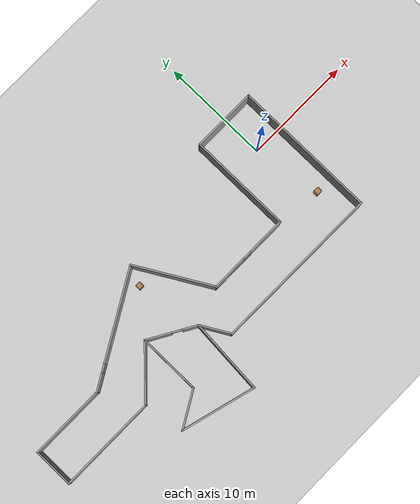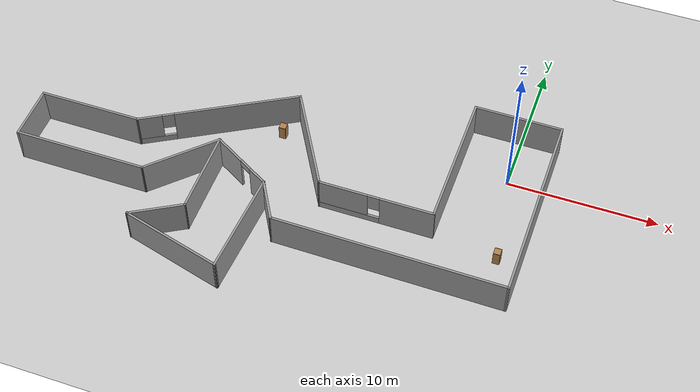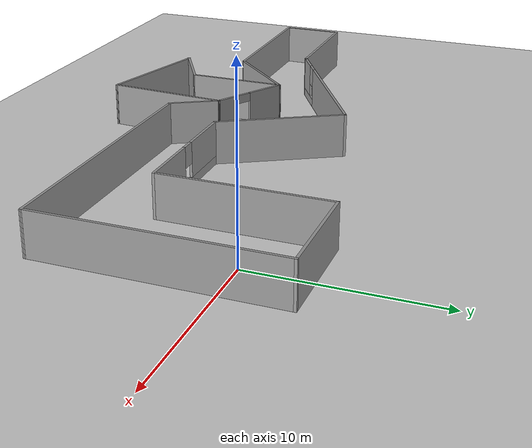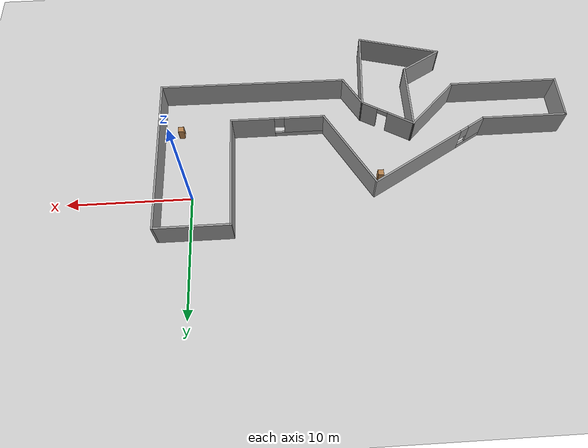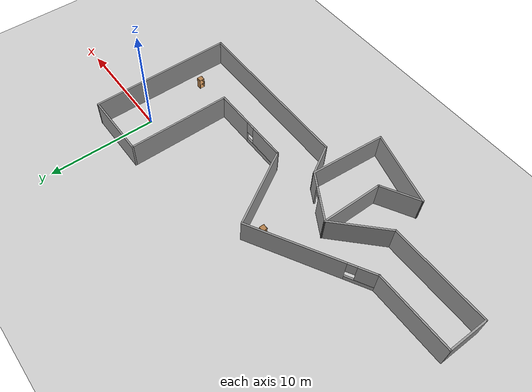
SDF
<sdf version="1.6">
 <world name="default">
  <light name="sun" type="directional">
   <pose>0 0 10 0 -0 0</pose>
   <diffuse>0.8 0.8 0.8 1</diffuse>
   <specular>0.2 0.2 0.2 1</specular>
   <attenuation>
    <range>1000</range>
    <constant>0.9</constant>
    <linear>0.01</linear>
    <quadratic>0.001</quadratic>
   </attenuation>
   <direction>-0.5 0.1 -0.9</direction>
  </light>
  <model name="ground_plane">
   <static>1</static>
   <link name="link">
    <collision name="collision">
     <geometry><plane><normal>0 0 1</normal><size>100 100</size></plane></geometry>
     <surface><friction><ode><mu>100</mu><mu2>50</mu2></ode></friction></surface>
    </collision>
    <visual name="visual">
     <cast_shadows>0</cast_shadows>
     <geometry><plane><normal>0 0 1</normal><size>100 100</size></plane></geometry>
     <material>
      <script><uri>file://media/materials/scripts/gazebo.material</uri><name>Gazebo/Grey</name></script>
     </material>
    </visual>
   </link>
  </model>
  <gravity>0 0 -9.8</gravity>
  <magnetic_field>6e-06 2.3e-05 -4.2e-05</magnetic_field>
  <atmosphere type="adiabatic"/>
  <physics name="default_physics" default="0" type="ode">
   <max_step_size>0.001</max_step_size>
   <real_time_factor>1</real_time_factor>
   <real_time_update_rate>1000</real_time_update_rate>
  </physics>
  <scene><ambient>0.4 0.4 0.4 1</ambient><background>0.7 0.7 0.7 1</background><shadows>1</shadows></scene>
  <spherical_coordinates>
   <surface_model>EARTH_WGS84</surface_model>
   <latitude_deg>0</latitude_deg>
   <longitude_deg>0</longitude_deg>
   <elevation>0</elevation>
   <heading_deg>0</heading_deg>
  </spherical_coordinates>
  <model name="cabinet_clone_1">
   <static>1</static>
   <link name="cabinet_bottom_plate">
    <inertial>
     <pose>0 0 -1 0 -0 0</pose>
     <inertia><ixx>2.05</ixx><ixy>0</ixy><ixz>0</ixz><iyy>2.05</iyy><iyz>0</iyz><izz>2.05</izz></inertia>
     <mass>25</mass>
    </inertial>
    <collision name="cabinet_bottom_plate_geom">
     <pose>0 0 0.01 0 -0 0</pose>
     <geometry><box><size>0.45 0.45 0.02</size></box></geometry>
    </collision>
    <visual name="cabinet_bottom_plate_geom_visual">
     <pose>0 0 0.01 0 -0 0</pose>
     <geometry><box><size>0.45 0.45 0.02</size></box></geometry>
     <material>
      <script><uri>file://media/materials/scripts/gazebo.material</uri><name>Gazebo/Wood</name></script>
     </material>
    </visual>
    <collision name="cabinet_bottom_plate_geom_cabinet_back_plate">
     <pose>0.235 0 0.51 0 -0 0</pose>
     <geometry><box><size>0.02 0.45 1.02</size></box></geometry>
    </collision>
    <visual name="cabinet_bottom_plate_geom_cabinet_back_plate_visual">
     <pose>0.235 0 0.51 0 -0 0</pose>
     <geometry><box><size>0.02 0.45 1.02</size></box></geometry>
     <material>
      <script><uri>file://media/materials/scripts/gazebo.material</uri><name>Gazebo/Wood</name></script>
     </material>
    </visual>
    <collision name="cabinet_bottom_plate_geom_cabinet_left_plate">
     <pose>0 0.235 0.51 0 -0 0</pose>
     <geometry><box><size>0.45 0.02 1.02</size></box></geometry>
    </collision>
    <visual name="cabinet_bottom_plate_geom_cabinet_left_plate_visual">
     <pose>0 0.235 0.51 0 -0 0</pose>
     <geometry><box><size>0.45 0.02 1.02</size></box></geometry>
     <material>
      <script><uri>file://media/materials/scripts/gazebo.material</uri><name>Gazebo/Wood</name></script>
     </material>
    </visual>
    <collision name="cabinet_bottom_plate_geom_cabinet_middle_plate">
     <pose>0 0 0.51 0 -0 0</pose>
     <geometry><box><size>0.45 0.45 0.02</size></box></geometry>
    </collision>
    <visual name="cabinet_bottom_plate_geom_cabinet_middle_plate_visual">
     <pose>0 0 0.51 0 -0 0</pose>
     <geometry><box><size>0.45 0.45 0.02</size></box></geometry>
     <material>
      <script><uri>file://media/materials/scripts/gazebo.material</uri><name>Gazebo/Wood</name></script>
     </material>
    </visual>
    <collision name="cabinet_bottom_plate_geom_cabinet_right_plate">
     <pose>0 -0.235 0.51 0 -0 0</pose>
     <geometry><box><size>0.45 0.02 1.02</size></box></geometry>
    </collision>
    <visual name="cabinet_bottom_plate_geom_cabinet_right_plate_visual">
     <pose>0 -0.235 0.51 0 -0 0</pose>
     <geometry><box><size>0.45 0.02 1.02</size></box></geometry>
     <material>
      <script><uri>file://media/materials/scripts/gazebo.material</uri><name>Gazebo/Wood</name></script>
     </material>
    </visual>
    <collision name="cabinet_bottom_plate_geom_cabinet_top_plate">
     <pose>0 0 1.01 0 -0 0</pose>
     <geometry><box><size>0.45 0.45 0.02</size></box></geometry>
    </collision>
    <visual name="cabinet_bottom_plate_geom_cabinet_top_plate_visual">
     <pose>0 0 1.01 0 -0 0</pose>
     <geometry><box><size>0.45 0.45 0.02</size></box></geometry>
     <material>
      <script><uri>file://media/materials/scripts/gazebo.material</uri><name>Gazebo/Wood</name></script>
     </material>
    </visual>
   </link>
   <pose>-15.2919 -1.01995 0 0 -0 0</pose>
  </model>
  <model name="cabinet_clone_2">
   <static>1</static>
   <link name="cabinet_bottom_plate">
    <inertial>
     <pose>0 0 -1 0 -0 0</pose>
     <inertia><ixx>2.05</ixx><ixy>0</ixy><ixz>0</ixz><iyy>2.05</iyy><iyz>0</iyz><izz>2.05</izz></inertia>
     <mass>25</mass>
    </inertial>
    <collision name="cabinet_bottom_plate_geom">
     <pose>0 0 0.01 0 -0 0</pose>
     <geometry><box><size>0.45 0.45 0.02</size></box></geometry>
    </collision>
    <visual name="cabinet_bottom_plate_geom_visual">
     <pose>0 0 0.01 0 -0 0</pose>
     <geometry><box><size>0.45 0.45 0.02</size></box></geometry>
     <material>
      <script><uri>file://media/materials/scripts/gazebo.material</uri><name>Gazebo/Wood</name></script>
     </material>
    </visual>
    <collision name="cabinet_bottom_plate_geom_cabinet_back_plate">
     <pose>0.235 0 0.51 0 -0 0</pose>
     <geometry><box><size>0.02 0.45 1.02</size></box></geometry>
    </collision>
    <visual name="cabinet_bottom_plate_geom_cabinet_back_plate_visual">
     <pose>0.235 0 0.51 0 -0 0</pose>
     <geometry><box><size>0.02 0.45 1.02</size></box></geometry>
     <material>
      <script><uri>file://media/materials/scripts/gazebo.material</uri><name>Gazebo/Wood</name></script>
     </material>
    </visual>
    <collision name="cabinet_bottom_plate_geom_cabinet_left_plate">
     <pose>0 0.235 0.51 0 -0 0</pose>
     <geometry><box><size>0.45 0.02 1.02</size></box></geometry>
    </collision>
    <visual name="cabinet_bottom_plate_geom_cabinet_left_plate_visual">
     <pose>0 0.235 0.51 0 -0 0</pose>
     <geometry><box><size>0.45 0.02 1.02</size></box></geometry>
     <material>
      <script><uri>file://media/materials/scripts/gazebo.material</uri><name>Gazebo/Wood</name></script>
     </material>
    </visual>
    <collision name="cabinet_bottom_plate_geom_cabinet_middle_plate">
     <pose>0 0 0.51 0 -0 0</pose>
     <geometry><box><size>0.45 0.45 0.02</size></box></geometry>
    </collision>
    <visual name="cabinet_bottom_plate_geom_cabinet_middle_plate_visual">
     <pose>0 0 0.51 0 -0 0</pose>
     <geometry><box><size>0.45 0.45 0.02</size></box></geometry>
     <material>
      <script><uri>file://media/materials/scripts/gazebo.material</uri><name>Gazebo/Wood</name></script>
     </material>
    </visual>
    <collision name="cabinet_bottom_plate_geom_cabinet_right_plate">
     <pose>0 -0.235 0.51 0 -0 0</pose>
     <geometry><box><size>0.45 0.02 1.02</size></box></geometry>
    </collision>
    <visual name="cabinet_bottom_plate_geom_cabinet_right_plate_visual">
     <pose>0 -0.235 0.51 0 -0 0</pose>
     <geometry><box><size>0.45 0.02 1.02</size></box></geometry>
     <material>
      <script><uri>file://media/materials/scripts/gazebo.material</uri><name>Gazebo/Wood</name></script>
     </material>
    </visual>
    <collision name="cabinet_bottom_plate_geom_cabinet_top_plate">
     <pose>0 0 1.01 0 -0 0</pose>
     <geometry><box><size>0.45 0.45 0.02</size></box></geometry>
    </collision>
    <visual name="cabinet_bottom_plate_geom_cabinet_top_plate_visual">
     <pose>0 0 1.01 0 -0 0</pose>
     <geometry><box><size>0.45 0.45 0.02</size></box></geometry>
     <material>
      <script><uri>file://media/materials/scripts/gazebo.material</uri><name>Gazebo/Wood</name></script>
     </material>
    </visual>
   </link>
   <pose>0.9834 -6.14509 0 0 -0 0</pose>
  </model>
  <model name="My_building">
   <pose>-14.197 -5.11874 0 0 -0 0</pose>
   <link name="Wall_11">
    <collision name="Wall_11_Collision">
     <geometry><box><size>13.25 0.15 2.5</size></box></geometry>
     <pose>0 0 1.25 0 -0 0</pose>
    </collision>
    <visual name="Wall_11_Visual">
     <pose>0 0 1.25 0 -0 0</pose>
     <geometry><box><size>13.25 0.15 2.5</size></box></geometry>
     <material>
      <script><uri>file://media/materials/scripts/gazebo.material</uri><name>Gazebo/Grey</name></script>
      <ambient>1 1 1 1</ambient>
     </material>
     <meta><layer>0</layer></meta>
    </visual>
    <pose>16.6854 2.15823 0 0 -0 1.5708</pose>
   </link>
   <link name="Wall_12">
    <collision name="Wall_12_Collision">
     <geometry><box><size>6 0.15 2.5</size></box></geometry>
     <pose>0 0 1.25 0 -0 0</pose>
    </collision>
    <visual name="Wall_12_Visual">
     <pose>0 0 1.25 0 -0 0</pose>
     <geometry><box><size>6 0.15 2.5</size></box></geometry>
     <material>
      <script><uri>file://media/materials/scripts/gazebo.material</uri><name>Gazebo/Grey</name></script>
      <ambient>1 1 1 1</ambient>
     </material>
     <meta><layer>0</layer></meta>
    </visual>
    <pose>13.7604 8.70823 0 0 -0 3.14159</pose>
   </link>
   <link name="Wall_13">
    <collision name="Wall_13_Collision">
     <geometry><box><size>9.5 0.15 2.5</size></box></geometry>
     <pose>0 0 1.25 0 -0 0</pose>
    </collision>
    <visual name="Wall_13_Visual">
     <pose>0 0 1.25 0 -0 0</pose>
     <geometry><box><size>9.5 0.15 2.5</size></box></geometry>
     <material>
      <script><uri>file://media/materials/scripts/gazebo.material</uri><name>Gazebo/Grey</name></script>
      <ambient>1 1 1 1</ambient>
     </material>
     <meta><layer>0</layer></meta>
    </visual>
    <pose>10.8354 4.03323 0 0 0 -1.5708</pose>
   </link>
   <link name="Wall_14">
    <pose>7.03543 -0.641771 0 0 -0 3.14159</pose>
    <visual name="Wall_14_Visual_0">
     <pose>-2.06762 0 1.25 0 -0 0</pose>
     <geometry><box><size>3.61476 0.15 2.5</size></box></geometry>
     <material>
      <script><uri>file://media/materials/scripts/gazebo.material</uri><name>Gazebo/Grey</name></script>
      <ambient>1 1 1 1</ambient>
     </material>
     <meta><layer>0</layer></meta>
    </visual>
    <collision name="Wall_14_Collision_0">
     <geometry><box><size>3.61476 0.15 2.5</size></box></geometry>
     <pose>-2.06762 0 1.25 0 -0 0</pose>
    </collision>
    <visual name="Wall_14_Visual_1">
     <pose>1.80738 0 0.25 0 -0 0</pose>
     <geometry><box><size>4.13524 0.15 0.5</size></box></geometry>
     <material>
      <script><uri>file://media/materials/scripts/gazebo.material</uri><name>Gazebo/Grey</name></script>
      <ambient>1 1 1 1</ambient>
     </material>
     <meta><layer>0</layer></meta>
    </visual>
    <collision name="Wall_14_Collision_1">
     <geometry><box><size>4.13524 0.15 0.5</size></box></geometry>
     <pose>1.80738 0 0.25 0 -0 0</pose>
    </collision>
    <visual name="Wall_14_Visual_2">
     <pose>2.20738 0 1.5 0 -0 0</pose>
     <geometry><box><size>3.33524 0.15 2</size></box></geometry>
     <material>
      <script><uri>file://media/materials/scripts/gazebo.material</uri><name>Gazebo/Grey</name></script>
      <ambient>1 1 1 1</ambient>
     </material>
     <meta><layer>0</layer></meta>
    </visual>
    <collision name="Wall_14_Collision_2">
     <geometry><box><size>3.33524 0.15 2</size></box></geometry>
     <pose>2.20738 0 1.5 0 -0 0</pose>
    </collision>
    <visual name="Wall_14_Visual_3">
     <pose>0.13976 0 1.9 0 -0 0</pose>
     <geometry><box><size>0.8 0.15 1.2</size></box></geometry>
     <material>
      <script><uri>file://media/materials/scripts/gazebo.material</uri><name>Gazebo/Grey</name></script>
      <ambient>1 1 1 1</ambient>
     </material>
     <meta><layer>0</layer></meta>
    </visual>
    <collision name="Wall_14_Collision_3">
     <geometry><box><size>0.8 0.15 1.2</size></box></geometry>
     <pose>0.13976 0 1.9 0 -0 0</pose>
    </collision>
   </link>
   <link name="Wall_15">
    <collision name="Wall_15_Collision">
     <geometry><box><size>7.5 0.15 2.5</size></box></geometry>
     <pose>0 0 1.25 0 -0 0</pose>
    </collision>
    <visual name="Wall_15_Visual">
     <pose>0 0 1.25 0 -0 0</pose>
     <geometry><box><size>7.5 0.15 2.5</size></box></geometry>
     <material>
      <script><uri>file://media/materials/scripts/gazebo.material</uri><name>Gazebo/Grey</name></script>
      <ambient>1 1 1 1</ambient>
     </material>
     <meta><layer>0</layer></meta>
    </visual>
    <pose>1.39793 2.54087 0 0 -0 2.0944</pose>
   </link>
   <link name="Wall_16">
    <pose>-5.13776 3.01102 0 0 0 -2.61799</pose>
    <visual name="Wall_16_Visual_0">
     <pose>-1.24866 0 1.25 0 -0 0</pose>
     <geometry><box><size>8.50268 0.15 2.5</size></box></geometry>
     <material>
      <script><uri>file://media/materials/scripts/gazebo.material</uri><name>Gazebo/Grey</name></script>
      <ambient>1 1 1 1</ambient>
     </material>
     <meta><layer>0</layer></meta>
    </visual>
    <collision name="Wall_16_Collision_0">
     <geometry><box><size>8.50268 0.15 2.5</size></box></geometry>
     <pose>-1.24866 0 1.25 0 -0 0</pose>
    </collision>
    <visual name="Wall_16_Visual_1">
     <pose>4.25134 0 0.25 0 -0 0</pose>
     <geometry><box><size>2.49732 0.15 0.5</size></box></geometry>
     <material>
      <script><uri>file://media/materials/scripts/gazebo.material</uri><name>Gazebo/Grey</name></script>
      <ambient>1 1 1 1</ambient>
     </material>
     <meta><layer>0</layer></meta>
    </visual>
    <collision name="Wall_16_Collision_1">
     <geometry><box><size>2.49732 0.15 0.5</size></box></geometry>
     <pose>4.25134 0 0.25 0 -0 0</pose>
    </collision>
    <visual name="Wall_16_Visual_2">
     <pose>4.65134 0 1.5 0 -0 0</pose>
     <geometry><box><size>1.69732 0.15 2</size></box></geometry>
     <material>
      <script><uri>file://media/materials/scripts/gazebo.material</uri><name>Gazebo/Grey</name></script>
      <ambient>1 1 1 1</ambient>
     </material>
     <meta><layer>0</layer></meta>
    </visual>
    <collision name="Wall_16_Collision_2">
     <geometry><box><size>1.69732 0.15 2</size></box></geometry>
     <pose>4.65134 0 1.5 0 -0 0</pose>
    </collision>
    <visual name="Wall_16_Visual_3">
     <pose>3.40268 0 1.9 0 -0 0</pose>
     <geometry><box><size>0.8 0.15 1.2</size></box></geometry>
     <material>
      <script><uri>file://media/materials/scripts/gazebo.material</uri><name>Gazebo/Grey</name></script>
      <ambient>1 1 1 1</ambient>
     </material>
     <meta><layer>0</layer></meta>
    </visual>
    <collision name="Wall_16_Collision_3">
     <geometry><box><size>0.8 0.15 1.2</size></box></geometry>
     <pose>3.40268 0 1.9 0 -0 0</pose>
    </collision>
   </link>
   <link name="Wall_17">
    <collision name="Wall_17_Collision">
     <geometry><box><size>7 0.15 2.5</size></box></geometry>
     <pose>0 0 1.25 0 -0 0</pose>
    </collision>
    <visual name="Wall_17_Visual">
     <pose>0 0 1.25 0 -0 0</pose>
     <geometry><box><size>7 0.15 2.5</size></box></geometry>
     <material>
      <script><uri>file://media/materials/scripts/gazebo.material</uri><name>Gazebo/Grey</name></script>
      <ambient>1 1 1 1</ambient>
     </material>
     <meta><layer>0</layer></meta>
    </visual>
    <pose>-13.2609 0.298516 0 0 -0 3.14159</pose>
   </link>
   <link name="Wall_18">
    <collision name="Wall_18_Collision">
     <geometry><box><size>3.75 0.15 2.5</size></box></geometry>
     <pose>0 0 1.25 0 -0 0</pose>
    </collision>
    <visual name="Wall_18_Visual">
     <pose>0 0 1.25 0 -0 0</pose>
     <geometry><box><size>3.75 0.15 2.5</size></box></geometry>
     <material>
      <script><uri>file://media/materials/scripts/gazebo.material</uri><name>Gazebo/Grey</name></script>
      <ambient>1 1 1 1</ambient>
     </material>
     <meta><layer>0</layer></meta>
    </visual>
    <pose>-16.6859 -1.50148 0 0 0 -1.5708</pose>
   </link>
   <link name="Wall_19">
    <collision name="Wall_19_Collision">
     <geometry><box><size>9 0.15 2.5</size></box></geometry>
     <pose>0 0 1.25 0 -0 0</pose>
    </collision>
    <visual name="Wall_19_Visual">
     <pose>0 0 1.25 0 -0 0</pose>
     <geometry><box><size>9 0.15 2.5</size></box></geometry>
     <material>
      <script><uri>file://media/materials/scripts/gazebo.material</uri><name>Gazebo/Grey</name></script>
      <ambient>1 1 1 1</ambient>
     </material>
     <meta><layer>0</layer></meta>
    </visual>
    <pose>-12.2609 -3.30148 0 0 -0 0</pose>
   </link>
   <link name="Wall_20">
    <collision name="Wall_20_Collision">
     <geometry><box><size>5.5 0.15 2.5</size></box></geometry>
     <pose>0 0 1.25 0 -0 0</pose>
    </collision>
    <visual name="Wall_20_Visual">
     <pose>0 0 1.25 0 -0 0</pose>
     <geometry><box><size>5.5 0.15 2.5</size></box></geometry>
     <material>
      <script><uri>file://media/materials/scripts/gazebo.material</uri><name>Gazebo/Grey</name></script>
      <ambient>1 1 1 1</ambient>
     </material>
     <meta><layer>0</layer></meta>
    </visual>
    <pose>-5.94443 -1.40997 0 0 -0 0.785398</pose>
   </link>
   <link name="Wall_21">
    <pose>-2.06106 -0.668463 0 0 0 -0.523599</pose>
    <visual name="Wall_21_Visual_0">
     <pose>-1.18161 0 1.25 0 -0 0</pose>
     <geometry><box><size>2.38679 0.15 2.5</size></box></geometry>
     <material>
      <script><uri>file://media/materials/scripts/gazebo.material</uri><name>Gazebo/Grey</name></script>
      <ambient>1 1 1 1</ambient>
     </material>
     <meta><layer>0</layer></meta>
    </visual>
    <collision name="Wall_21_Collision_0">
     <geometry><box><size>2.38679 0.15 2.5</size></box></geometry>
     <pose>-1.18161 0 1.25 0 -0 0</pose>
    </collision>
    <visual name="Wall_21_Visual_1">
     <pose>1.64339 0 1.25 0 -0 0</pose>
     <geometry><box><size>1.46321 0.15 2.5</size></box></geometry>
     <material>
      <script><uri>file://media/materials/scripts/gazebo.material</uri><name>Gazebo/Grey</name></script>
      <ambient>1 1 1 1</ambient>
     </material>
     <meta><layer>0</layer></meta>
    </visual>
    <collision name="Wall_21_Collision_1">
     <geometry><box><size>1.46321 0.15 2.5</size></box></geometry>
     <pose>1.64339 0 1.25 0 -0 0</pose>
    </collision>
    <visual name="Wall_21_Visual_2">
     <pose>0.461787 0 2.25 0 -0 0</pose>
     <geometry><box><size>0.9 0.15 0.5</size></box></geometry>
     <material>
      <script><uri>file://media/materials/scripts/gazebo.material</uri><name>Gazebo/Grey</name></script>
      <ambient>1 1 1 1</ambient>
     </material>
     <meta><layer>0</layer></meta>
    </visual>
    <collision name="Wall_21_Collision_2">
     <geometry><box><size>0.9 0.15 0.5</size></box></geometry>
     <pose>0.461787 0 2.25 0 -0 0</pose>
    </collision>
   </link>
   <link name="Wall_22">
    <collision name="Wall_22_Collision">
     <geometry><box><size>3 0.15 2.5</size></box></geometry>
     <pose>0 0 1.25 0 -0 0</pose>
    </collision>
    <visual name="Wall_22_Visual">
     <pose>0 0 1.25 0 -0 0</pose>
     <geometry><box><size>3 0.15 2.5</size></box></geometry>
     <material>
      <script><uri>file://media/materials/scripts/gazebo.material</uri><name>Gazebo/Grey</name></script>
      <ambient>1 1 1 1</ambient>
     </material>
     <meta><layer>0</layer></meta>
    </visual>
    <pose>0.643295 -3.05255 0 0 0 -1.0472</pose>
   </link>
   <link name="Wall_23">
    <collision name="Wall_23_Collision">
     <geometry><box><size>15.48 0.15 2.5</size></box></geometry>
     <pose>0 0 1.25 0 -0 0</pose>
    </collision>
    <visual name="Wall_23_Visual">
     <pose>0 0 1.25 0 -0 0</pose>
     <geometry><box><size>15.48 0.15 2.5</size></box></geometry>
     <material>
      <script><uri>file://media/materials/scripts/gazebo.material</uri><name>Gazebo/Grey</name></script>
      <ambient>1 1 1 1</ambient>
     </material>
     <meta><layer>0</layer></meta>
    </visual>
    <pose>9.02061 -4.3392 0 0 0 -0.006858</pose>
   </link>
   <link name="Wall_25">
    <collision name="Wall_25_Collision">
     <geometry><box><size>5.75 0.15 2.5</size></box></geometry>
     <pose>0 0 1.25 0 -0 0</pose>
    </collision>
    <visual name="Wall_25_Visual">
     <pose>0 0 1.25 0 -0 0</pose>
     <geometry><box><size>5.75 0.15 2.5</size></box></geometry>
     <material>
      <script><uri>file://media/materials/scripts/gazebo.material</uri><name>Gazebo/Grey</name></script>
      <ambient>1 1 1 1</ambient>
     </material>
     <meta><layer>0</layer></meta>
    </visual>
    <pose>-4.05292 -2.31846 0 0 0 -1.5708</pose>
   </link>
   <link name="Wall_27">
    <collision name="Wall_27_Collision">
     <geometry><box><size>3.75 0.15 2.5</size></box></geometry>
     <pose>0 0 1.25 0 -0 0</pose>
    </collision>
    <visual name="Wall_27_Visual">
     <pose>0 0 1.25 0 -0 0</pose>
     <geometry><box><size>3.75 0.15 2.5</size></box></geometry>
     <material>
      <script><uri>file://media/materials/scripts/gazebo.material</uri><name>Gazebo/Grey</name></script>
      <ambient>1 1 1 1</ambient>
     </material>
     <meta><layer>0</layer></meta>
    </visual>
    <pose>-5.61177 -6.01846 0 0 0 -2.61799</pose>
   </link>
   <link name="Wall_28">
    <collision name="Wall_28_Collision">
     <geometry><box><size>0.16 0.15 2.5</size></box></geometry>
     <pose>0 0 1.25 0 -0 0</pose>
    </collision>
    <visual name="Wall_28_Visual">
     <pose>0 0 1.25 0 -0 0</pose>
     <geometry><box><size>0.16 0.15 2.5</size></box></geometry>
     <material>
      <script><uri>file://media/materials/scripts/gazebo.material</uri><name>Gazebo/Grey</name></script>
      <ambient>1 1 1 1</ambient>
     </material>
     <meta><layer>0</layer></meta>
    </visual>
    <pose>-7.16561 -6.91846 0 0 -0 0</pose>
   </link>
   <link name="Wall_29">
    <collision name="Wall_29_Collision">
     <geometry><box><size>7 0.15 2.5</size></box></geometry>
     <pose>0 0 1.25 0 -0 0</pose>
    </collision>
    <visual name="Wall_29_Visual">
     <pose>0 0 1.25 0 -0 0</pose>
     <geometry><box><size>7 0.15 2.5</size></box></geometry>
     <material>
      <script><uri>file://media/materials/scripts/gazebo.material</uri><name>Gazebo/Grey</name></script>
      <ambient>1 1 1 1</ambient>
     </material>
     <meta><layer>0</layer></meta>
    </visual>
    <pose>-3.85232 -7.80492 0 0 0 -0.261799</pose>
   </link>
   <link name="Wall_30">
    <collision name="Wall_30_Collision">
     <geometry><box><size>7.03929 0.15 2.5</size></box></geometry>
     <pose>0 0 1.25 0 -0 0</pose>
    </collision>
    <visual name="Wall_30_Visual">
     <pose>0 0 1.25 0 -0 0</pose>
     <geometry><box><size>7.03929 0.15 2.5</size></box></geometry>
     <material>
      <script><uri>file://media/materials/scripts/gazebo.material</uri><name>Gazebo/Grey</name></script>
      <ambient>1 1 1 1</ambient>
     </material>
     <meta><layer>0</layer></meta>
    </visual>
    <pose>-0.306613 -5.25492 0 0 -0 1.50182</pose>
   </link>
   <static>1</static>
  </model>
 </world>
</sdf>
